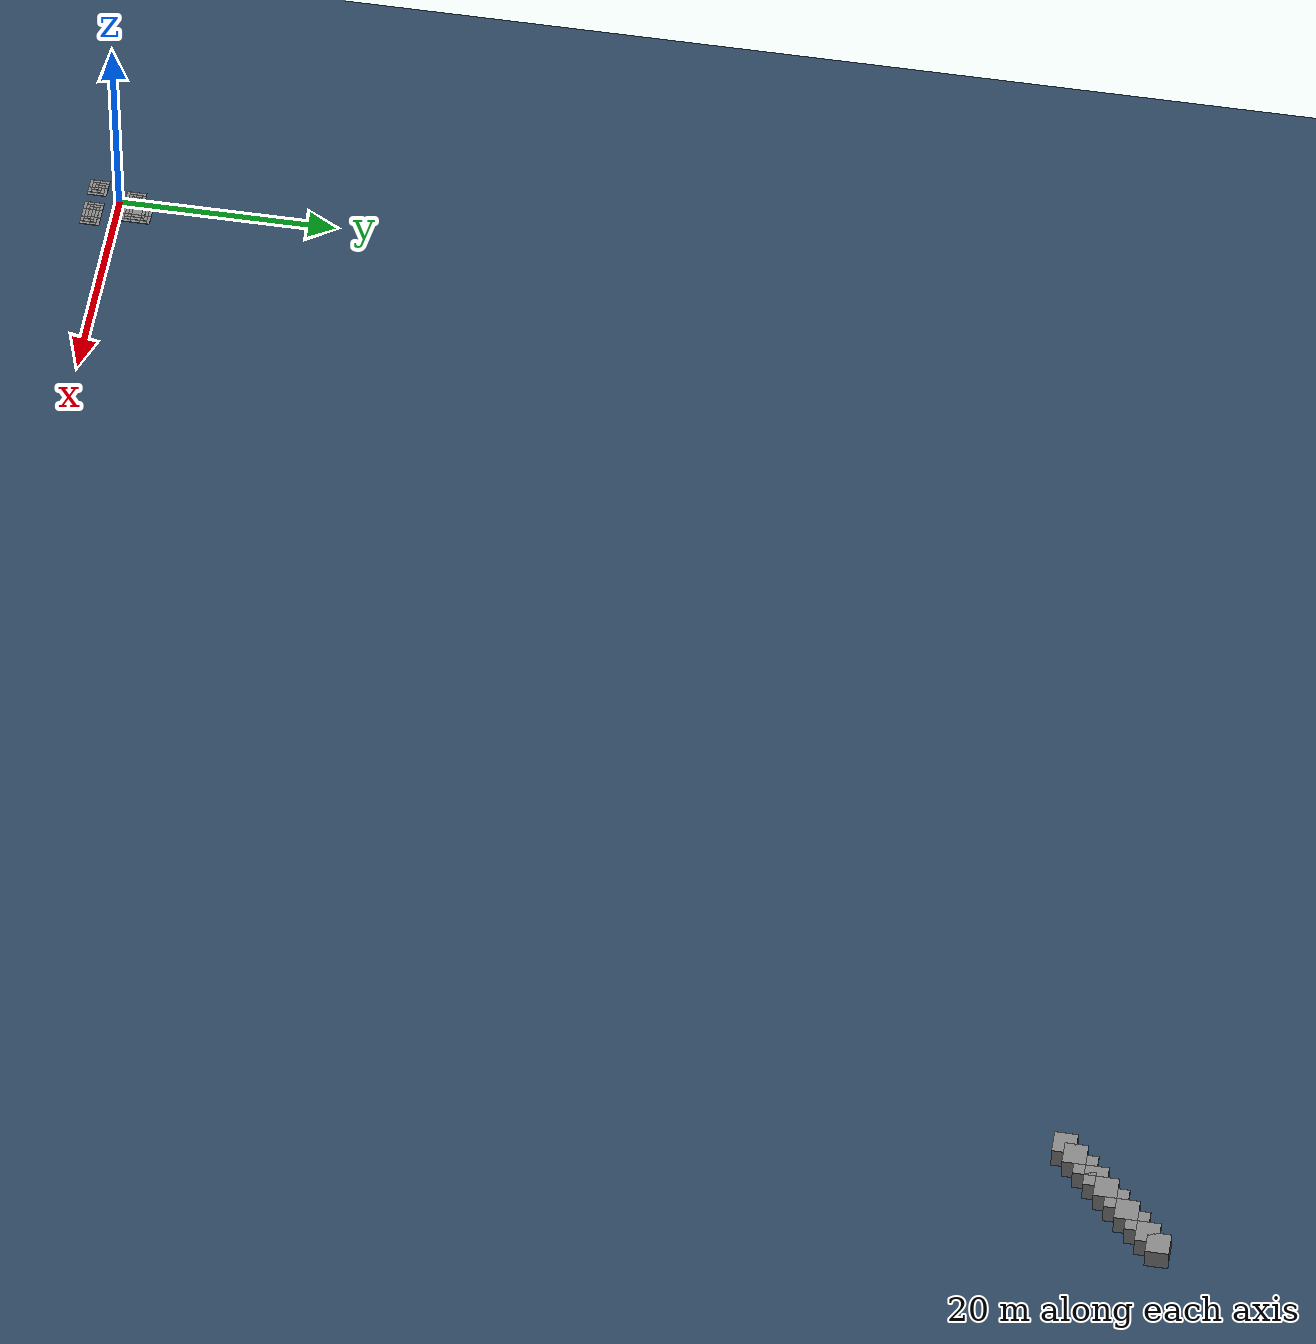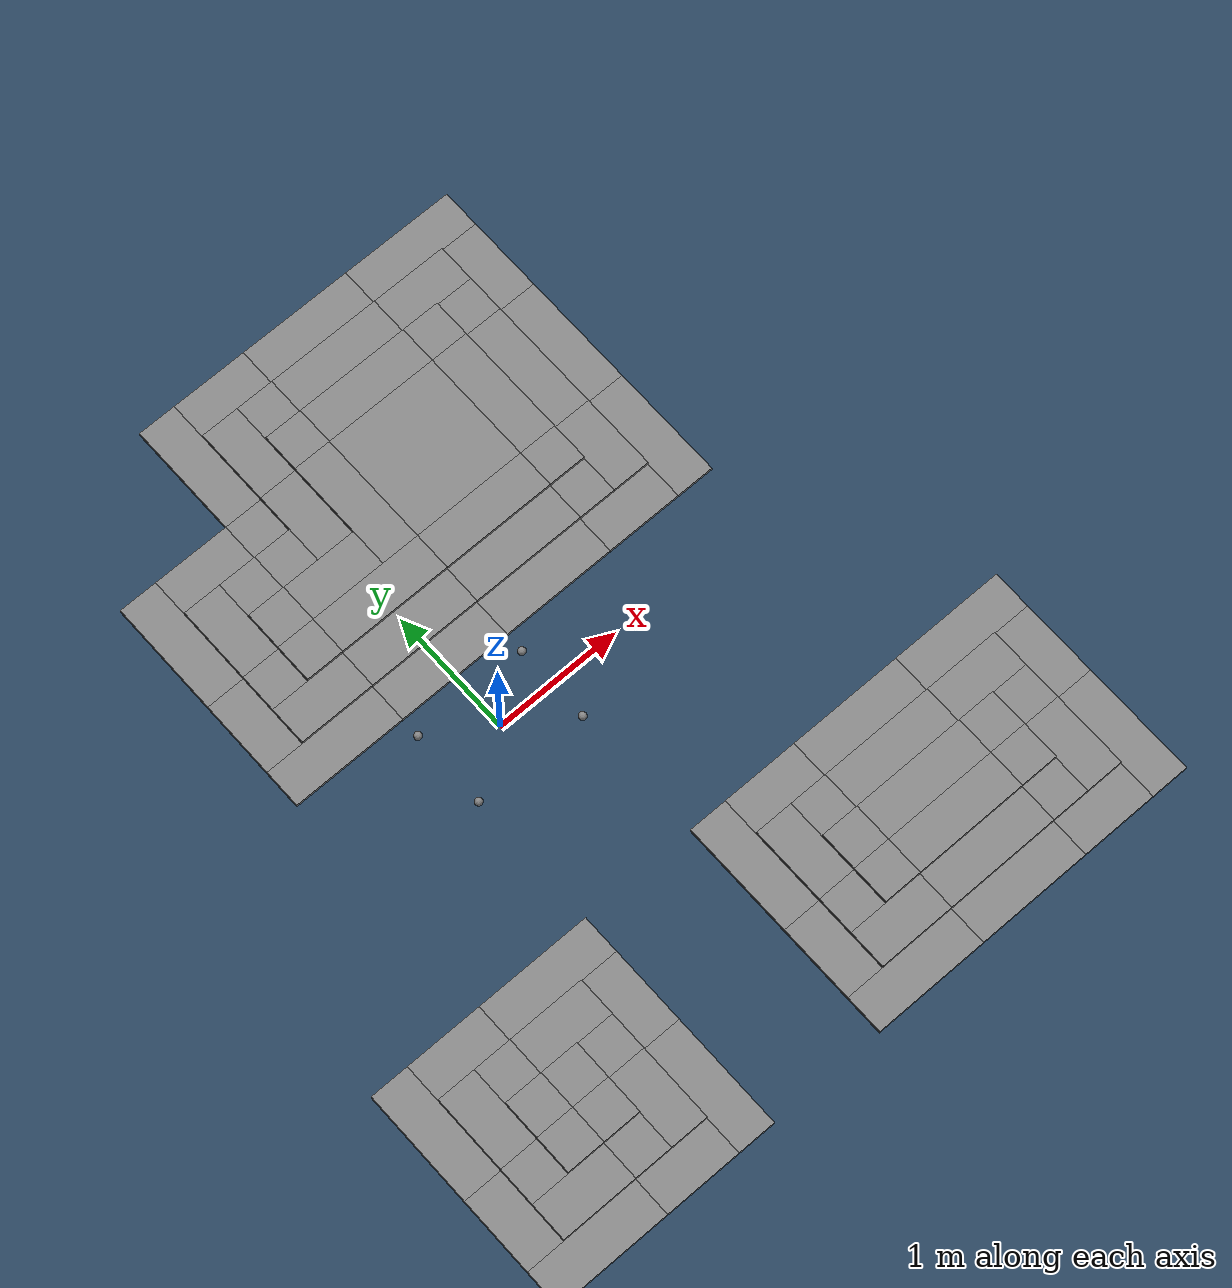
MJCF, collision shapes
<mujoco model="anymal_c scene">
  <include file="anymal_mjx_feetonly.xml" />

  <visual>
    <headlight diffuse="0.6 0.6 0.6" ambient="0.3 0.3 0.3" specular="0 0 0" />
    <rgba haze="0.15 0.25 0.35 1" />
    <global azimuth="120" elevation="-20" />
  </visual>

  <statistic center="0 0 .3" extent="1.2" />

  <asset>
    <texture type="skybox" builtin="gradient" rgb1="0.3 0.5 0.7" rgb2="0 0 0" width="512" height="3072" />
    <texture type="2d" name="groundplane" builtin="checker" mark="edge" rgb1="0.2 0.3 0.4" rgb2="0.1 0.2 0.3" markrgb="0.8 0.8 0.8" width="300" height="300" />
    <material name="groundplane" texture="groundplane" texuniform="true" texrepeat="5 5" reflectance="0.2" />
  </asset>

  <worldbody>
    <light pos="0 0 1.5" dir="0 0 -1" directional="true" />
    <geom name="floor" size="0 0 0.05" type="plane" material="groundplane" contype="2" conaffinity="1" />
  <body pos="-1.5 -2.4 0.045" quat="0.7071067811865476 0.0 0.0 -0.7071067811865475" name="box_sDiHz"><geom type="box" size="0.15 0.15 0.045" contype="2" conaffinity="1" /></body><body pos="-1.65 -2.6999999999999997 0.03" quat="0.7071067811865476 0.0 0.0 -0.7071067811865475" name="box_yZN00"><geom type="box" size="0.15 0.3 0.03" contype="2" conaffinity="1" /></body><body pos="-1.7999999999999998 -2.9999999999999996 0.015" quat="0.7071067811865476 0.0 0.0 -0.7071067811865475" name="box_1UbTy"><geom type="box" size="0.15 0.44999999999999996 0.015" contype="2" conaffinity="1" /></body><body pos="-1.7999999999999998 -2.4 0.03" quat="1.0 0.0 0.0 0.0" name="box_VUq6H"><geom type="box" size="0.15 0.15 0.03" contype="2" conaffinity="1" /></body><body pos="-2.0999999999999996 -2.55 0.015" quat="1.0 0.0 0.0 0.0" name="box_WO3lN"><geom type="box" size="0.15 0.3 0.015" contype="2" conaffinity="1" /></body><body pos="-1.5 -2.0999999999999996 0.045" quat="6.123233995736766e-17 0.0 0.0 1.0" name="box_zJWSR"><geom type="box" size="0.15 0.15 0.045" contype="2" conaffinity="1" /></body><body pos="-1.7999999999999998 -1.9499999999999997 0.03" quat="6.123233995736766e-17 0.0 0.0 1.0" name="box_m0mWq"><geom type="box" size="0.15 0.3 0.03" contype="2" conaffinity="1" /></body><body pos="-2.0999999999999996 -1.7999999999999998 0.015" quat="6.123233995736766e-17 0.0 0.0 1.0" name="box_Nf0dV"><geom type="box" size="0.15 0.44999999999999996 0.015" contype="2" conaffinity="1" /></body><body pos="-1.5 -1.7999999999999998 0.03" quat="-0.7071067811865475 -0.0 0.0 0.7071067811865476" name="box_J58co"><geom type="box" size="0.15 0.15 0.03" contype="2" conaffinity="1" /></body><body pos="-1.65 -1.4999999999999998 0.015" quat="-0.7071067811865475 -0.0 0.0 0.7071067811865476" name="box_Np8US"><geom type="box" size="0.15 0.3 0.015" contype="2" conaffinity="1" /></body><body pos="-1.2 -2.4 0.045" quat="1.0 0.0 0.0 0.0" name="box_WeFVp"><geom type="box" size="0.15 0.15 0.045" contype="2" conaffinity="1" /></body><body pos="-0.8999999999999999 -2.55 0.03" quat="1.0 0.0 0.0 0.0" name="box_fuTr5"><geom type="box" size="0.15 0.3 0.03" contype="2" conaffinity="1" /></body><body pos="-0.5999999999999999 -2.6999999999999997 0.015" quat="1.0 0.0 0.0 0.0" name="box_UUI0H"><geom type="box" size="0.15 0.44999999999999996 0.015" contype="2" conaffinity="1" /></body><body pos="-1.1999999999999997 -2.6999999999999997 0.03" quat="0.7071067811865476 0.0 0.0 0.7071067811865475" name="box_LD0aw"><geom type="box" size="0.15 0.15 0.03" contype="2" conaffinity="1" /></body><body pos="-1.0499999999999998 -3.0 0.015" quat="0.7071067811865476 0.0 0.0 0.7071067811865475" name="box_I3HNG"><geom type="box" size="0.15 0.3 0.015" contype="2" conaffinity="1" /></body><body pos="-1.1999999999999997 -2.0999999999999996 0.045" quat="0.7071067811865476 0.0 0.0 0.7071067811865475" name="box_WwApN"><geom type="box" size="0.15 0.15 0.045" contype="2" conaffinity="1" /></body><body pos="-1.0499999999999998 -1.7999999999999998 0.03" quat="0.7071067811865476 0.0 0.0 0.7071067811865475" name="box_K5EMe"><geom type="box" size="0.15 0.3 0.03" contype="2" conaffinity="1" /></body><body pos="-0.8999999999999998 -1.4999999999999998 0.015" quat="0.7071067811865476 0.0 0.0 0.7071067811865475" name="box_I3jd6"><geom type="box" size="0.15 0.44999999999999996 0.015" contype="2" conaffinity="1" /></body><body pos="-0.8999999999999999 -2.0999999999999996 0.03" quat="6.123233995736766e-17 0.0 0.0 1.0" name="box_IpVKD"><geom type="box" size="0.15 0.15 0.03" contype="2" conaffinity="1" /></body><body pos="-0.5999999999999999 -1.9499999999999997 0.015" quat="6.123233995736766e-17 0.0 0.0 1.0" name="box_sWQqz"><geom type="box" size="0.15 0.3 0.015" contype="2" conaffinity="1" /></body><body pos="-0.6 1.2 0.045" quat="0.7071067811865476 0.0 0.0 -0.7071067811865475" name="box_BlrtY"><geom type="box" size="0.15 0.15 0.045" contype="2" conaffinity="1" /></body><body pos="-0.75 0.8999999999999999 0.03" quat="0.7071067811865476 0.0 0.0 -0.7071067811865475" name="box_TGeXZ"><geom type="box" size="0.15 0.3 0.03" contype="2" conaffinity="1" /></body><body pos="-0.8999999999999999 0.5999999999999999 0.015" quat="0.7071067811865476 0.0 0.0 -0.7071067811865475" name="box_ioHa1"><geom type="box" size="0.15 0.44999999999999996 0.015" contype="2" conaffinity="1" /></body><body pos="-0.8999999999999999 1.1999999999999997 0.03" quat="1.0 0.0 0.0 0.0" name="box_InRcs"><geom type="box" size="0.15 0.15 0.03" contype="2" conaffinity="1" /></body><body pos="-1.2 1.0499999999999998 0.015" quat="1.0 0.0 0.0 0.0" name="box_IdVy6"><geom type="box" size="0.15 0.3 0.015" contype="2" conaffinity="1" /></body><body pos="-0.6 1.4999999999999998 0.045" quat="6.123233995736766e-17 0.0 0.0 1.0" name="box_cXG4s"><geom type="box" size="0.15 0.15 0.045" contype="2" conaffinity="1" /></body><body pos="-0.8999999999999999 1.65 0.03" quat="6.123233995736766e-17 0.0 0.0 1.0" name="box_FnyNo"><geom type="box" size="0.15 0.3 0.03" contype="2" conaffinity="1" /></body><body pos="-1.2 1.7999999999999998 0.015" quat="6.123233995736766e-17 0.0 0.0 1.0" name="box_SUfk5"><geom type="box" size="0.15 0.44999999999999996 0.015" contype="2" conaffinity="1" /></body><body pos="-0.6 1.7999999999999998 0.03" quat="-0.7071067811865475 -0.0 0.0 0.7071067811865476" name="box_Tu1uE"><geom type="box" size="0.15 0.15 0.03" contype="2" conaffinity="1" /></body><body pos="-0.7499999999999999 2.0999999999999996 0.015" quat="-0.7071067811865475 -0.0 0.0 0.7071067811865476" name="box_K6iM2"><geom type="box" size="0.15 0.3 0.015" contype="2" conaffinity="1" /></body><body pos="-1.8369701987210294e-17 0.6 0.015" quat="0.7071067811865476 0.0 0.0 0.7071067811865475" name="box_56ver"><geom type="box" size="0.15 0.44999999999999996 0.015" contype="2" conaffinity="1" /></body><body pos="0.0 0.8999999999999999 0.03" quat="0.7071067811865476 0.0 0.0 0.7071067811865475" name="box_Qv8NP"><geom type="box" size="0.15 0.44999999999999996 0.03" contype="2" conaffinity="1" /></body><body pos="1.83697019872103e-17 1.2 0.045" quat="0.7071067811865476 0.0 0.0 0.7071067811865475" name="box_nii1T"><geom type="box" size="0.15 0.44999999999999996 0.045" contype="2" conaffinity="1" /></body><body pos="-0.3 2.0999999999999996 0.015" quat="1.0 0.0 0.0 0.0" name="box_LUqj6"><geom type="box" size="0.15 0.15 0.015" contype="2" conaffinity="1" /></body><body pos="0.0 1.9499999999999997 0.03" quat="1.0 0.0 0.0 0.0" name="box_WP0vT"><geom type="box" size="0.15 0.3 0.03" contype="2" conaffinity="1" /></body><body pos="0.3 1.7999999999999998 0.045" quat="1.0 0.0 0.0 0.0" name="box_qCVfB"><geom type="box" size="0.15 0.44999999999999996 0.045" contype="2" conaffinity="1" /></body><body pos="-0.29999999999999993 1.7999999999999998 0.03" quat="0.7071067811865476 0.0 0.0 0.7071067811865475" name="box_h32yj"><geom type="box" size="0.15 0.15 0.03" contype="2" conaffinity="1" /></body><body pos="-0.14999999999999997 1.4999999999999998 0.045" quat="0.7071067811865476 0.0 0.0 0.7071067811865475" name="box_BBfjO"><geom type="box" size="0.15 0.3 0.045" contype="2" conaffinity="1" /></body><body pos="0.29999999999999993 2.4 0.045" quat="6.123233995736766e-17 0.0 0.0 1.0" name="box_iVkps"><geom type="box" size="0.15 0.15 0.045" contype="2" conaffinity="1" /></body><body pos="-1.836970198721029e-17 2.55 0.03" quat="6.123233995736766e-17 0.0 0.0 1.0" name="box_KwSjv"><geom type="box" size="0.15 0.3 0.03" contype="2" conaffinity="1" /></body><body pos="-0.3 2.6999999999999997 0.015" quat="6.123233995736766e-17 0.0 0.0 1.0" name="box_TUMyx"><geom type="box" size="0.15 0.44999999999999996 0.015" contype="2" conaffinity="1" /></body><body pos="0.29999999999999993 2.6999999999999997 0.03" quat="-0.7071067811865475 -0.0 0.0 0.7071067811865476" name="box_sqfsy"><geom type="box" size="0.15 0.15 0.03" contype="2" conaffinity="1" /></body><body pos="0.15 3.0 0.015" quat="-0.7071067811865475 -0.0 0.0 0.7071067811865476" name="box_FUxsM"><geom type="box" size="0.15 0.3 0.015" contype="2" conaffinity="1" /></body><body pos="1.1999999999999997 -2.4 0.045" quat="0.7071067811865476 0.0 0.0 -0.7071067811865475" name="box_h3PER"><geom type="box" size="0.15 0.15 0.045" contype="2" conaffinity="1" /></body><body pos="1.0499999999999998 -2.6999999999999997 0.03" quat="0.7071067811865476 0.0 0.0 -0.7071067811865475" name="box_qo13d"><geom type="box" size="0.15 0.3 0.03" contype="2" conaffinity="1" /></body><body pos="0.8999999999999999 -2.9999999999999996 0.015" quat="0.7071067811865476 0.0 0.0 -0.7071067811865475" name="box_SNeST"><geom type="box" size="0.15 0.44999999999999996 0.015" contype="2" conaffinity="1" /></body><body pos="0.8999999999999999 -2.4 0.03" quat="1.0 0.0 0.0 0.0" name="box_IzteY"><geom type="box" size="0.15 0.15 0.03" contype="2" conaffinity="1" /></body><body pos="0.5999999999999999 -2.55 0.015" quat="1.0 0.0 0.0 0.0" name="box_D3Mle"><geom type="box" size="0.15 0.3 0.015" contype="2" conaffinity="1" /></body><body pos="1.1999999999999997 -2.0999999999999996 0.045" quat="6.123233995736766e-17 0.0 0.0 1.0" name="box_fzRjA"><geom type="box" size="0.15 0.15 0.045" contype="2" conaffinity="1" /></body><body pos="0.8999999999999999 -1.9499999999999997 0.03" quat="6.123233995736766e-17 0.0 0.0 1.0" name="box_7S0UQ"><geom type="box" size="0.15 0.3 0.03" contype="2" conaffinity="1" /></body><body pos="0.5999999999999999 -1.7999999999999998 0.015" quat="6.123233995736766e-17 0.0 0.0 1.0" name="box_cBNe2"><geom type="box" size="0.15 0.44999999999999996 0.015" contype="2" conaffinity="1" /></body><body pos="1.1999999999999997 -1.7999999999999998 0.03" quat="-0.7071067811865475 -0.0 0.0 0.7071067811865476" name="box_pyeXs"><geom type="box" size="0.15 0.15 0.03" contype="2" conaffinity="1" /></body><body pos="1.0499999999999998 -1.4999999999999998 0.015" quat="-0.7071067811865475 -0.0 0.0 0.7071067811865476" name="box_HBJcr"><geom type="box" size="0.15 0.3 0.015" contype="2" conaffinity="1" /></body><body pos="0.8999999999999999 0.6 0.015" quat="0.7071067811865476 0.0 0.0 0.7071067811865475" name="box_ras3V"><geom type="box" size="0.15 0.44999999999999996 0.015" contype="2" conaffinity="1" /></body><body pos="0.8999999999999999 0.8999999999999999 0.03" quat="0.7071067811865476 0.0 0.0 0.7071067811865475" name="box_CK2We"><geom type="box" size="0.15 0.44999999999999996 0.03" contype="2" conaffinity="1" /></body><body pos="0.8999999999999999 1.2 0.045" quat="0.7071067811865476 0.0 0.0 0.7071067811865475" name="box_F0KYq"><geom type="box" size="0.15 0.44999999999999996 0.045" contype="2" conaffinity="1" /></body><body pos="0.8999999999999999 1.7999999999999998 0.045" quat="1.0 0.0 0.0 0.0" name="box_ihYTe"><geom type="box" size="0.44999999999999996 0.44999999999999996 0.045" contype="2" conaffinity="1" /></body><body pos="0.8999999999999999 2.9999999999999996 0.015" quat="0.7071067811865476 0.0 0.0 -0.7071067811865475" name="box_ZS91F"><geom type="box" size="0.15 0.44999999999999996 0.015" contype="2" conaffinity="1" /></body><body pos="0.8999999999999999 2.6999999999999997 0.03" quat="0.7071067811865476 0.0 0.0 -0.7071067811865475" name="box_FLDhw"><geom type="box" size="0.15 0.44999999999999996 0.03" contype="2" conaffinity="1" /></body><body pos="0.8999999999999999 2.3999999999999995 0.045" quat="0.7071067811865476 0.0 0.0 -0.7071067811865475" name="box_tYbv0"><geom type="box" size="0.15 0.44999999999999996 0.045" contype="2" conaffinity="1" /></body><body pos="1.7999999999999998 -2.9999999999999996 0.015" quat="0.7071067811865476 0.0 0.0 0.7071067811865475" name="box_CFJWD"><geom type="box" size="0.15 0.44999999999999996 0.015" contype="2" conaffinity="1" /></body><body pos="1.7999999999999998 -2.6999999999999997 0.03" quat="0.7071067811865476 0.0 0.0 0.7071067811865475" name="box_TJKWN"><geom type="box" size="0.15 0.44999999999999996 0.03" contype="2" conaffinity="1" /></body><body pos="1.7999999999999998 -2.3999999999999995 0.045" quat="0.7071067811865476 0.0 0.0 0.7071067811865475" name="box_kgRh4"><geom type="box" size="0.15 0.44999999999999996 0.045" contype="2" conaffinity="1" /></body><body pos="1.7999999999999998 -1.5 0.015" quat="0.7071067811865476 0.0 0.0 -0.7071067811865475" name="box_iNbCa"><geom type="box" size="0.15 0.44999999999999996 0.015" contype="2" conaffinity="1" /></body><body pos="1.7999999999999998 -1.7999999999999998 0.03" quat="0.7071067811865476 0.0 0.0 -0.7071067811865475" name="box_XIZd1"><geom type="box" size="0.15 0.44999999999999996 0.03" contype="2" conaffinity="1" /></body><body pos="1.7999999999999998 -2.0999999999999996 0.045" quat="0.7071067811865476 0.0 0.0 -0.7071067811865475" name="box_xEkKf"><geom type="box" size="0.15 0.44999999999999996 0.045" contype="2" conaffinity="1" /></body><body pos="1.4999999999999998 1.1999999999999997 0.045" quat="1.0 0.0 0.0 0.0" name="box_KwSPJ"><geom type="box" size="0.15 0.15 0.045" contype="2" conaffinity="1" /></body><body pos="1.7999999999999998 1.0499999999999998 0.03" quat="1.0 0.0 0.0 0.0" name="box_NcLEs"><geom type="box" size="0.15 0.3 0.03" contype="2" conaffinity="1" /></body><body pos="2.0999999999999996 0.8999999999999999 0.015" quat="1.0 0.0 0.0 0.0" name="box_yBJW8"><geom type="box" size="0.15 0.44999999999999996 0.015" contype="2" conaffinity="1" /></body><body pos="1.5 0.8999999999999999 0.03" quat="0.7071067811865476 0.0 0.0 0.7071067811865475" name="box_NpJCj"><geom type="box" size="0.15 0.15 0.03" contype="2" conaffinity="1" /></body><body pos="1.65 0.5999999999999999 0.015" quat="0.7071067811865476 0.0 0.0 0.7071067811865475" name="box_T2qy7"><geom type="box" size="0.15 0.3 0.015" contype="2" conaffinity="1" /></body><body pos="2.0999999999999996 1.7999999999999998 0.015" quat="6.123233995736766e-17 0.0 0.0 1.0" name="box_3H55x"><geom type="box" size="0.15 0.44999999999999996 0.015" contype="2" conaffinity="1" /></body><body pos="1.7999999999999998 1.7999999999999998 0.03" quat="6.123233995736766e-17 0.0 0.0 1.0" name="box_xm9Qh"><geom type="box" size="0.15 0.44999999999999996 0.03" contype="2" conaffinity="1" /></body><body pos="1.4999999999999998 1.7999999999999998 0.045" quat="6.123233995736766e-17 0.0 0.0 1.0" name="box_UpWsc"><geom type="box" size="0.15 0.44999999999999996 0.045" contype="2" conaffinity="1" /></body><body pos="1.5 2.4 0.045" quat="0.7071067811865476 0.0 0.0 0.7071067811865475" name="box_0NRPl"><geom type="box" size="0.15 0.15 0.045" contype="2" conaffinity="1" /></body><body pos="1.65 2.6999999999999997 0.03" quat="0.7071067811865476 0.0 0.0 0.7071067811865475" name="box_5mdvV"><geom type="box" size="0.15 0.3 0.03" contype="2" conaffinity="1" /></body><body pos="1.7999999999999998 2.9999999999999996 0.015" quat="0.7071067811865476 0.0 0.0 0.7071067811865475" name="box_LPDb4"><geom type="box" size="0.15 0.44999999999999996 0.015" contype="2" conaffinity="1" /></body><body pos="1.7999999999999998 2.4 0.03" quat="6.123233995736766e-17 0.0 0.0 1.0" name="box_PT1Oe"><geom type="box" size="0.15 0.15 0.03" contype="2" conaffinity="1" /></body><body pos="2.0999999999999996 2.55 0.015" quat="6.123233995736766e-17 0.0 0.0 1.0" name="box_Yip8w"><geom type="box" size="0.15 0.3 0.015" contype="2" conaffinity="1" /></body><body pos="2.4 -2.4 0.045" quat="1.0 0.0 0.0 0.0" name="box_kepYA"><geom type="box" size="0.15 0.15 0.045" contype="2" conaffinity="1" /></body><body pos="2.6999999999999997 -2.55 0.03" quat="1.0 0.0 0.0 0.0" name="box_gbprj"><geom type="box" size="0.15 0.3 0.03" contype="2" conaffinity="1" /></body><body pos="2.9999999999999996 -2.6999999999999997 0.015" quat="1.0 0.0 0.0 0.0" name="box_tqdbp"><geom type="box" size="0.15 0.44999999999999996 0.015" contype="2" conaffinity="1" /></body><body pos="2.4 -2.6999999999999997 0.03" quat="0.7071067811865476 0.0 0.0 0.7071067811865475" name="box_zVK3W"><geom type="box" size="0.15 0.15 0.03" contype="2" conaffinity="1" /></body><body pos="2.55 -3.0 0.015" quat="0.7071067811865476 0.0 0.0 0.7071067811865475" name="box_7obpz"><geom type="box" size="0.15 0.3 0.015" contype="2" conaffinity="1" /></body><body pos="2.4 -2.0999999999999996 0.045" quat="0.7071067811865476 0.0 0.0 0.7071067811865475" name="box_w80Z0"><geom type="box" size="0.15 0.15 0.045" contype="2" conaffinity="1" /></body><body pos="2.55 -1.7999999999999998 0.03" quat="0.7071067811865476 0.0 0.0 0.7071067811865475" name="box_GgQ4I"><geom type="box" size="0.15 0.3 0.03" contype="2" conaffinity="1" /></body><body pos="2.6999999999999997 -1.4999999999999998 0.015" quat="0.7071067811865476 0.0 0.0 0.7071067811865475" name="box_0bner"><geom type="box" size="0.15 0.44999999999999996 0.015" contype="2" conaffinity="1" /></body><body pos="2.6999999999999997 -2.0999999999999996 0.03" quat="6.123233995736766e-17 0.0 0.0 1.0" name="box_LH3vh"><geom type="box" size="0.15 0.15 0.03" contype="2" conaffinity="1" /></body><body pos="3.0 -1.9499999999999997 0.015" quat="6.123233995736766e-17 0.0 0.0 1.0" name="box_HYX9J"><geom type="box" size="0.15 0.3 0.015" contype="2" conaffinity="1" /></body><body pos="100 100 10" quat="1.0 0.0 0.0 0.0" name="box_iDIBr"><geom type="box" size="1.0 1.0 1.0" contype="2" conaffinity="1" /></body><body pos="101 101 10" quat="1.0 0.0 0.0 0.0" name="box_I3bAU"><geom type="box" size="1.0 1.0 1.0" contype="2" conaffinity="1" /></body><body pos="102 102 10" quat="1.0 0.0 0.0 0.0" name="box_LDmJV"><geom type="box" size="1.0 1.0 1.0" contype="2" conaffinity="1" /></body><body pos="103 103 10" quat="1.0 0.0 0.0 0.0" name="box_Hph2l"><geom type="box" size="1.0 1.0 1.0" contype="2" conaffinity="1" /></body><body pos="104 104 10" quat="1.0 0.0 0.0 0.0" name="box_3tkeV"><geom type="box" size="1.0 1.0 1.0" contype="2" conaffinity="1" /></body><body pos="105 105 10" quat="1.0 0.0 0.0 0.0" name="box_0IT0f"><geom type="box" size="1.0 1.0 1.0" contype="2" conaffinity="1" /></body><body pos="106 106 10" quat="1.0 0.0 0.0 0.0" name="box_lMisQ"><geom type="box" size="1.0 1.0 1.0" contype="2" conaffinity="1" /></body><body pos="107 107 10" quat="1.0 0.0 0.0 0.0" name="box_8aFm7"><geom type="box" size="1.0 1.0 1.0" contype="2" conaffinity="1" /></body><body pos="108 108 10" quat="1.0 0.0 0.0 0.0" name="box_epdEe"><geom type="box" size="1.0 1.0 1.0" contype="2" conaffinity="1" /></body><body pos="109 109 10" quat="1.0 0.0 0.0 0.0" name="box_gpy7q"><geom type="box" size="1.0 1.0 1.0" contype="2" conaffinity="1" /></body></worldbody>
</mujoco>

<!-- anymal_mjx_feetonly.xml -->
<mujoco model="anymal_c">
  <compiler angle="radian" meshdir="assets" texturedir="assets" autolimits="true"/>

 <custom>
    <numeric data="4" name="max_contact_points"/>
    <numeric data="25" name="max_geom_pairs"/>
 </custom>
  <option iterations="5" ls_iterations="5" timestep="0.004" integrator="Euler">
    <flag eulerdamp="disable"/>
  </option>

  <default>
    <material specular="0" shininess="0.25"/>
    <default class="anymal_c">
      <joint damping="1"/>
      <default class="visual">
        <geom type="mesh" contype="0" conaffinity="0" group="2"/>
        <default class="visual_zflip">
          <geom quat="0 0 0 1"/>
        </default>
      </default>
      <default class="collision">
         <geom group="3"/>
        <default class="foot">
          <geom type="sphere" size="0.03" pos="0 0 0.02325" solimp="0.9 .95 0.023" contype="1" conaffinity="2" />
        </default>
      </default>
      <default class="affine">
        <position kp="100" ctrlrange="-6.28 6.28" forcerange="-80 80"/>
      </default>
    </default>
  </default>

  <asset>
    <material name="black_plastic" rgba="0.007 0.007 0.007 1"/>
    <material name="green" rgba="0.052 0.178 0.033 1"/>
    <material name="red" rgba="0.178 0.006 0.005 1"/>
    <material name="yellow" rgba="0.178 0.119 0.006 1"/>
    <material name="lwl" rgba="0.8 0.8 0.8 1"/>
    <material name="base" texture="base"/>
    <material name="top_shell" texture="top_shell"/>
    <material name="bottom_shell" texture="bottom_shell"/>
    <material name="hip_l" texture="hip_l"/>
    <material name="thigh" texture="thigh"/>
    <material name="shank_l" texture="shank_l"/>
    <material name="foot" texture="foot"/>
    <material name="hip_r" texture="hip_r"/>
    <material name="shank" texture="shank_r"/>
    <material name="hatch" texture="hatch"/>
    <material name="remote" texture="remote"/>
    <material name="handle" texture="handle"/>
    <material name="face" texture="face"/>
    <material name="depth_camera" texture="depth_camera"/>
    <material name="wide_angle_camera" texture="wide_angle_camera"/>
    <material name="battery" texture="battery"/>
    <material name="lidar_cage" texture="lidar_cage"/>
    <material name="lidar" texture="lidar"/>
    <material name="drive" texture="drive"/>

    <texture type="2d" name="base" file="base.png"/>
    <texture type="2d" name="top_shell" file="top_shell.png"/>
    <texture type="2d" name="bottom_shell" file="bottom_shell.png"/>
    <texture type="2d" name="remote" file="remote.png"/>
    <texture type="2d" name="hatch" file="hatch.png"/>
    <texture type="2d" name="handle" file="handle.png"/>
    <texture type="2d" name="face" file="face.png"/>
    <texture type="2d" name="battery" file="battery.png"/>
    <texture type="2d" name="lidar_cage" file="lidar_cage.png"/>
    <texture type="2d" name="depth_camera" file="depth_camera.png"/>
    <texture type="2d" name="wide_angle_camera" file="wide_angle_camera.png"/>
    <texture type="2d" name="lidar" file="lidar.png"/>
    <texture type="2d" name="drive" file="drive.png"/>
    <texture type="2d" name="hip_l" file="hip_l.png"/>
    <texture type="2d" name="shank_l" file="shank_l.png"/>
    <texture type="2d" name="foot" file="foot.png"/>
    <texture type="2d" name="thigh" file="thigh.png"/>
    <texture type="2d" name="shank_r" file="shank_r.png"/>
    <texture type="2d" name="hip_r" file="hip_r.png"/>

    <mesh file="base_0.obj"/>
    <mesh file="base_1.obj"/>
    <mesh file="base_2.obj"/>
    <mesh file="base_3.obj"/>
    <mesh file="base_4.obj"/>
    <mesh file="base_5.obj"/>
    <mesh file="top_shell.obj"/>
    <mesh file="bottom_shell.obj"/>
    <mesh file="remote.obj"/>
    <mesh file="handle.obj"/>
    <mesh file="face.obj"/>
    <mesh file="wide_angle_camera.obj"/>
    <mesh file="depth_camera.obj"/>
    <mesh file="battery.obj"/>
    <mesh file="lidar_cage.obj"/>
    <mesh file="lidar.obj"/>
    <mesh file="drive.obj"/>
    <mesh file="hip_l.obj"/>
    <mesh file="thigh.obj"/>
    <mesh file="shank_l.obj"/>
    <mesh file="foot.obj"/>
    <mesh file="hip_r.obj"/>
    <mesh file="hatch.obj"/>
    <mesh file="shank_r.obj"/>
  </asset>

  <worldbody>
    <body name="base" pos="0 0 0.62" quat="0 0 0 1" childclass="anymal_c">
      <camera name="track" pos="0 -2.5 0" xyaxes="1 0 0 0 1 5" mode="trackcom"/>
      <freejoint/>
      <inertial mass="19.2035" pos="0.0025 0 0.0502071" quat="0.5 0.5 0.5 0.5" diaginertia="0.639559 0.624031 0.217374"/>
      <geom mesh="base_0" material="green" class="visual"/>
      <geom mesh="base_1" material="yellow" class="visual"/>
      <geom mesh="base_2" material="red" class="visual"/>
      <geom mesh="base_3" material="black_plastic" class="visual"/>
      <geom mesh="base_4" material="lwl" class="visual"/>
      <geom mesh="base_5" material="base" class="visual"/>
      <geom material="top_shell" mesh="top_shell" class="visual"/>
      <geom material="bottom_shell" mesh="bottom_shell" class="visual"/>
      <geom material="remote" mesh="remote" class="visual"/>
      <geom material="handle" mesh="handle" class="visual"/>
      <geom pos="0.4145 0 0" material="face" mesh="face" class="visual"/>
      <geom pos="-0.4145 0 0" material="face" mesh="face" class="visual_zflip"/>
      <geom material="battery" mesh="battery" class="visual"/>
      <geom pos="0.116 0 0.073" material="hatch" mesh="hatch" class="visual"/>
      <site name="imu" pos="0 0 0 "/>
      <body name="LF_HIP" pos="0.2999 0.104 0" quat="0.258819 0.965926 0 0">
        <inertial mass="2.781" pos="0.0566606 -0.015294 -0.00829784" quat="-0.127978 0.709783 -0.135278 0.679359"
          diaginertia="0.00585729 0.00491868 0.00329081"/>
        <joint name="LF_HAA" axis="1 0 0" range="-0.72 0.49"/>
        <geom quat="0.258819 -0.965926 0 0" material="hip_l" mesh="hip_l" class="visual"/>
        <geom pos="0.0599 -0.0725816 -0.041905" quat="0.183013 -0.683013 0.683013 0.183013" material="drive"
          mesh="drive" class="visual"/>
        <body name="LF_THIGH" pos="0.0599 -0.0725816 -0.041905" quat="0.183013 -0.683013 0.683013 0.183013">
          <inertial mass="3.071" pos="0.0308147 4.64995e-05 -0.245696" quat="0.993166 -0.00515309 -0.0806592 0.0841972"
            diaginertia="0.03025 0.0298943 0.00418465"/>
          <joint name="LF_HFE" axis="1 0 0" range="-9.42478 9.42478"/>
          <geom quat="1 0 0 -1" material="thigh" mesh="thigh" class="visual"/>
          <geom pos="0.1003 0 -0.285" material="drive" mesh="drive" class="visual"/>
          <body name="LF_SHANK" pos="0.1003 0 -0.285">
            <inertial mass="0.58842" pos="0.005462 -0.0612528 -0.0806598"
              quat="0.992934 -0.115904 -0.00105487 -0.0254421" diaginertia="0.0101637 0.00923838 0.00111927"/>
            <joint name="LF_KFE" axis="1 0 0" range="-9.42478 9.42478"/>
            <geom quat="1 0 0 -1" material="shank_l" mesh="shank_l" class="visual"/>
            <geom pos="0.01305 -0.08795 -0.33797" quat="0.382683 0 0 -0.92388" material="foot" mesh="foot"
              class="visual"/>
            <geom name="FL" class="foot" pos="0.01305 -0.08795 -0.31547"/>
            <site name="FL_foot" pos="0.01305 -0.08795 -0.31547"/>
          </body>
        </body>
      </body>
      <body name="RF_HIP" pos="0.2999 -0.104 0" quat="0.258819 -0.965926 0 0">
        <inertial mass="2.781" pos="0.0567633 0.015294 -0.00829784" quat="0.13524 0.679072 0.127985 0.710065"
          diaginertia="0.00585928 0.0049205 0.00329064"/>
        <joint name="RF_HAA" axis="1 0 0" range="-0.49 0.72"/>
        <geom quat="0.258819 0.965926 0 0" material="hip_r" mesh="hip_r" class="visual"/>
        <geom pos="0.0599 0.0725816 -0.041905" quat="0.183013 0.683013 0.683013 -0.183013" material="drive" mesh="drive"
          class="visual"/>
        <body name="RF_THIGH" pos="0.0599 0.0725816 -0.041905" quat="0.183013 0.683013 0.683013 -0.183013">
          <inertial mass="3.071" pos="0.0308147 4.64995e-05 -0.245696" quat="0.992775 -0.00512735 -0.0806685 0.0886811"
            diaginertia="0.0302511 0.0298933 0.0041845"/>
          <joint name="RF_HFE" axis="-1 0 0" range="-9.42478 9.42478"/>
          <geom quat="1 0 0 -1" material="thigh" mesh="thigh" class="visual"/>
          <geom pos="0.1003 0 -0.285" material="drive" mesh="drive" class="visual"/>
          <body name="RF_SHANK" pos="0.1003 0 -0.285">
            <inertial mass="0.58842" pos="0.005462 0.0612528 -0.0806598" quat="0.992934 0.115904 -0.00105487 0.0254421"
              diaginertia="0.0101637 0.00923838 0.00111927"/>
            <joint name="RF_KFE" axis="-1 0 0" range="-9.42478 9.42478"/>
            <geom quat="1 0 0 1" material="shank" mesh="shank_r" class="visual"/>
            <geom pos="0.01305 0.08795 -0.33797" quat="0.382683 0 0 0.92388" material="foot" mesh="foot" class="visual"/>
            <geom name="FR" class="foot" pos="0.01305 0.08795 -0.31547"/>
            <site name="FR_foot" pos="0.01305 0.08795 -0.31547"/>
          </body>
        </body>
      </body>
      <body name="LH_HIP" pos="-0.2999 0.104 0" quat="0 0 0.965926 -0.258819">
        <inertial mass="2.781" pos="0.0567633 0.015294 -0.00829784" quat="0.13524 0.679072 0.127985 0.710065"
          diaginertia="0.00585928 0.0049205 0.00329064"/>
        <joint name="LH_HAA" axis="-1 0 0" range="-0.72 0.49"/>
        <geom quat="-0.258819 -0.965926 0 0" material="hip_r" mesh="hip_r" class="visual"/>
        <geom pos="0.0599 0.0725816 -0.041905" quat="0.183013 0.683013 0.683013 -0.183013" material="drive" mesh="drive"
          class="visual"/>
        <body name="LH_THIGH" pos="0.0599 0.0725816 -0.041905" quat="0.183013 0.683013 0.683013 -0.183013">
          <inertial mass="3.071" pos="0.0308147 4.64995e-05 -0.245696" quat="0.992775 -0.00512735 -0.0806685 0.0886811"
            diaginertia="0.0302511 0.0298933 0.0041845"/>
          <joint name="LH_HFE" axis="1 0 0" range="-9.42478 9.42478"/>
          <geom quat="1 0 0 -1" material="thigh" mesh="thigh" class="visual"/>
          <geom pos="0.1003 0 -0.285" material="drive" mesh="drive" class="visual"/>
          <body name="LH_SHANK" pos="0.1003 0 -0.285">
            <inertial mass="0.58842" pos="0.005462 0.0612528 -0.0806598" quat="0.992934 0.115904 -0.00105487 0.0254421"
              diaginertia="0.0101637 0.00923838 0.00111927"/>
            <joint name="LH_KFE" axis="1 0 0" range="-9.42478 9.42478"/>
            <geom quat="-1 0 0 -1" material="shank" mesh="shank_r" class="visual"/>
            <geom pos="0.01305 0.08795 -0.33797" quat="-0.382683 0 0 -0.92388" material="foot" mesh="foot"
              class="visual"/>
            <geom name="RL" class="foot" pos="0.01305 0.08795 -0.31547"/>
            <site name="RL_foot" pos="0.01305 0.08795 -0.31547"/>
          </body>
        </body>
      </body>
      <body name="RH_HIP" pos="-0.2999 -0.104 0" quat="0 0 -0.965926 -0.258819">
        <inertial mass="2.781" pos="0.0566606 -0.015294 -0.00829784" quat="-0.127978 0.709783 -0.135278 0.679359"
          diaginertia="0.00585729 0.00491868 0.00329081"/>
        <joint name="RH_HAA" axis="-1 0 0" range="-0.49 0.72"/>
        <geom quat="-0.258819 0.965926 0 0" material="hip_l" mesh="hip_l" class="visual"/>
        <geom pos="0.0599 -0.0725816 -0.041905" quat="-0.183013 0.683013 -0.683013 -0.183013" material="drive"
          mesh="drive" class="visual"/>
        <body name="RH_THIGH" pos="0.0599 -0.0725816 -0.041905" quat="-0.183013 0.683013 -0.683013 -0.183013">
          <inertial mass="3.071" pos="0.0308147 4.64995e-05 -0.245696" quat="0.993166 -0.00515309 -0.0806592 0.0841972"
            diaginertia="0.03025 0.0298943 0.00418465"/>
          <joint name="RH_HFE" axis="-1 0 0" range="-9.42478 9.42478"/>
          <geom quat="1 0 0 -1" material="thigh" mesh="thigh" class="visual"/>
          <geom pos="0.1003 0 -0.285" material="drive" mesh="drive" class="visual"/>
          <body name="RH_SHANK" pos="0.1003 0 -0.285">
            <inertial mass="0.58842" pos="0.005462 -0.0612528 -0.0806598"
              quat="0.992934 -0.115904 -0.00105487 -0.0254421" diaginertia="0.0101637 0.00923838 0.00111927"/>
            <joint name="RH_KFE" axis="-1 0 0" range="-9.42478 9.42478"/>
            <geom quat="1 0 0 -1" material="shank_l" mesh="shank_l" class="visual"/>
            <geom pos="0.01305 -0.08795 -0.33797" quat="0.382683 0 0 -0.92388" material="foot" mesh="foot"
              class="visual"/>
            <geom name="RR" class="foot" pos="0.01305 -0.08795 -0.31547"/>
            <site name="RR_foot" pos="0.01305 -0.08795 -0.31547"/>
          </body>
        </body>
      </body>
    </body>
  </worldbody>

    <sensor>
    <gyro site="imu" name="gyro"/>
    <accelerometer site="imu" name="accelerometer"/>
    <framequat objtype="site" objname="imu" name="orientation"/>
    <framepos objtype="site" objname="imu" name="global_position"/>
    <framelinvel objtype="site" objname="imu" name="global_linvel"/>
    <frameangvel objtype="site" objname="imu" name="global_angvel"/>
    <!-- returns local velocity of robot -->
    <velocimeter site="imu" name="local_linvel"/>
    <framezaxis objtype="site" objname="imu" name="upvector"/>
    <framepos objtype="site" objname="FR_foot" name="FR_pos" reftype="site" refname="imu"/>
    <framepos objtype="site" objname="FL_foot" name="FL_pos" reftype="site" refname="imu"/>
    <framepos objtype="site" objname="RR_foot" name="RR_pos" reftype="site" refname="imu"/>
    <framepos objtype="site" objname="RL_foot" name="RL_pos" reftype="site" refname="imu"/>
    <framelinvel objtype="site" objname="FR_foot" name="FR_foot_global_linvel"/>
    <framelinvel objtype="site" objname="FL_foot" name="FL_foot_global_linvel"/>
    <framelinvel objtype="site" objname="RR_foot" name="RR_foot_global_linvel"/>
    <framelinvel objtype="site" objname="RL_foot" name="RL_foot_global_linvel"/>
    <contact name="FR_floor_found" geom1="FR" reduce="mindist" num="1" data="found"/>
    <contact name="FL_floor_found" geom1="FL" reduce="mindist" num="1" data="found"/>
    <contact name="RR_floor_found" geom1="RR" reduce="mindist" num="1" data="found"/>
    <contact name="RL_floor_found" geom1="RL" reduce="mindist" num="1" data="found"/>
  </sensor>

  <actuator>
    <position class="affine" joint="LF_HAA" name="LF_HAA"/>
    <position class="affine" joint="LF_HFE" name="LF_HFE"/>
    <position class="affine" joint="LF_KFE" name="LF_KFE"/>
    <position class="affine" joint="RF_HAA" name="RF_HAA"/>
    <position class="affine" joint="RF_HFE" name="RF_HFE"/>
    <position class="affine" joint="RF_KFE" name="RF_KFE"/>
    <position class="affine" joint="LH_HAA" name="LH_HAA"/>
    <position class="affine" joint="LH_HFE" name="LH_HFE"/>
    <position class="affine" joint="LH_KFE" name="LH_KFE"/>
    <position class="affine" joint="RH_HAA" name="RH_HAA"/>
    <position class="affine" joint="RH_HFE" name="RH_HFE"/>
    <position class="affine" joint="RH_KFE" name="RH_KFE"/>
  </actuator>

  <!-- A higher standing position -->
  <keyframe>
    <key name="home"
      qpos="0.0 0.0 0.56 1.0 0.0 0.0 0.0 0.0 0.5235987755982988 -0.7853981 0.0 0.5235987755982988 -0.7853981 0.0 -0.5235987755982988 0.7853981 0.0 -0.5235987755982988 0.7853981"/>
  </keyframe>
</mujoco>
